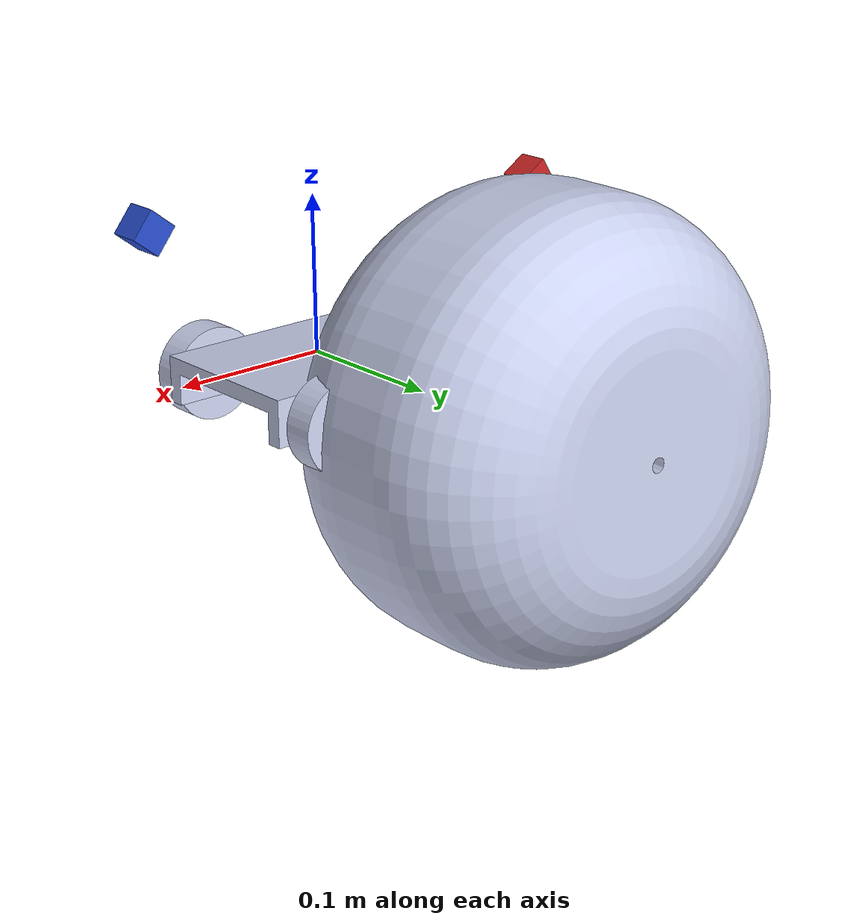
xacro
<?xml version='1.0'?>
<robot name="duckiebot_1" xmlns:xacro="http://www.ros.org/wiki/xacro">
  <xacro:arg name="veh" default="$(arg veh)"/>
  <gazebo>
    <plugin filename="libgazebo_ros_diff_drive.so" name="differential_drive_controller">
      <legacyMode>false</legacyMode>
      <alwaysOn>true</alwaysOn>
      <updateRate>10</updateRate>
      <leftJoint>lwheel_joint</leftJoint>
      <rightJoint>rwheel_joint</rightJoint>
      <wheelSeparation>0.4</wheelSeparation>
      <wheelDiameter>0.2</wheelDiameter>
      <torque>10</torque>
      <commandTopic>$(arg veh)/cmd_vel</commandTopic>
      <odometryTopic>$(arg veh)odom</odometryTopic>
      <odometryFrame>odom</odometryFrame>
      <robotBaseFrame>base_link</robotBaseFrame>
    </plugin>
  </gazebo>

  <gazebo reference="camera">
    <material>Gazebo/Blue</material>
    <sensor name="camera_1" type="camera">
      <update_rate>30</update_rate>
      <camera name="head">
        <horizontal_fov>1.7</horizontal_fov>
        <image>
          <width>1920</width>
          <height>1440</height>
          <format>R8G8B8</format>
        </image>
        <clip>
          <near>0.1</near>
          <far>200</far>
        </clip>
      </camera>
      <plugin filename="libgazebo_ros_camera.so" name="camera_controller">
        <alwaysOn>true</alwaysOn>
        <updateRate>0.0</updateRate>
        <cameraName>$(arg veh)/front/camera_node</cameraName>
        <imageTopicName>image/raw</imageTopicName>
        <cameraInfoTopicName>camera_info</cameraInfoTopicName>
        <frameName>camera</frameName>
        <hackBaseline>0.07</hackBaseline>
      </plugin>
    </sensor>
  </gazebo>

  <gazebo reference="camera_2">
    <material>Gazebo/Red</material>
    <sensor name="camera_2" type="camera">
      <update_rate>30</update_rate>
      <camera name="head_2">
        <horizontal_fov>1.7</horizontal_fov>
        <image>
          <width>1920</width>
          <height>1440</height>
          <format>R8G8B8</format>
        </image>
        <clip>
          <near>0.1</near>
          <far>200</far>
        </clip>
      </camera>
      <plugin filename="libgazebo_ros_camera.so" name="camera_controller">
        <alwaysOn>true</alwaysOn>
        <updateRate>0.0</updateRate>
        <cameraName>$(arg veh)/back/camera_node</cameraName>
        <imageTopicName>image/raw</imageTopicName>
        <cameraInfoTopicName>camera_info</cameraInfoTopicName>
        <frameName>camera</frameName>
        <hackBaseline>0.07</hackBaseline>
      </plugin>
    </sensor>
  </gazebo>
  <link
    name="base_link">
    <inertial>
      <origin
        xyz="-0.0101024393214371 2.77555756156289E-17 -0.00724903839291099"
        rpy="0 0 0" />
      <mass
        value="22.4144467859455" />
      <inertia
        ixx="0.0262333315558155"
        ixy="-9.46739929586217E-20"
        ixz="1.25847877839234E-05"
        iyy="0.0594458638144052"
        iyz="3.28272538130837E-20"
        izz="0.0839695132659337" /><!--xx yy zz*100-->
    </inertial>
    <visual>
      <ori
        xyz="0 0 0"
        rpy="0 0 0" />
      <geometry>
        <mesh
          filename="package://duckiebot_1/meshes/base_link.STL" />
      </geometry>
      <material
        name="">
        <color
          rgba="0.792156862745098 0.819607843137255 0.933333333333333 1" />
      </material>
    </visual>
    <collision>
      <origin
        xyz="0 0 0"
        rpy="0 0 0" />
      <geometry>
        <mesh
          filename="package://duckiebot_1/meshes/base_link.STL" />
      </geometry>
    </collision>
  </link>
  <link
    name="lwheel_link">
    <inertial>
      <origin
        xyz="0 -0.01 1.38777878078145E-17"
        rpy="0 0 0" />
      <mass
        value="5.57789775644867" />
      <inertia
        ixx="145.803923229503E-05"
        ixy="-1.99984150579823E-21"
        ixz="1.05546145898492E-21"
        iyy="254.421861416015E-05"
        iyz="-3.05243290373849E-21"
        izz="145.803923229503E-05" /> <!--xx yy zz*100-->
    </inertial>
    <visual>
      <origin
        xyz="0 0 0"
        rpy="0 0 0" />
      <geometry>
        <mesh
          filename="package://duckiebot_1/meshes/lwheel_link.STL" />
      </geometry>
      <material
        name="">
        <color
          rgba="0.792156862745098 0.819607843137255 0.933333333333333 1" />
      </material>
    </visual>
    <collision>
      <origin
        xyz="0 0 0"
        rpy="0 0 0" />
      <geometry>
        <mesh
          filename="package://duckiebot_1/meshes/lwheel_link.STL" />
      </geometry>
    </collision>
  </link>
  <joint
    name="lwheel_joint"
    type="continuous">
    <origin
      xyz="0.037 0.076 -0.02"
      rpy="0 0 0" />
    <parent
      link="base_link" />
    <child
      link="lwheel_link" />
    <axis
      xyz="0 1 0" />
  </joint>
  <link
    name="rwheel_link">
    <inertial>
      <origin
        xyz="0 0.01 1.38777878078145E-17"
        rpy="0 0 0" />
      <mass
        value="5.57789775644868" />
      <inertia
        ixx="145.803923229503E-05"
        ixy="4.60062935577484E-21"
        ixz="-6.46471806336693E-23"
        iyy="254.421861416015E-05"
        iyz="-3.87738072626345E-21"
        izz="145.803923229503E-05" />
    </inertial>
    <visual>
      <origin
        xyz="0 0 0"
        rpy="0 0 0" />
      <geometry>
        <mesh
          filename="package://duckiebot_1/meshes/rwheel_link.STL" />
      </geometry>
      <material
        name="">
        <color
          rgba="0.792156862745098 0.819607843137255 0.933333333333333 1" />
      </material>
    </visual>
    <collision>
      <origin
        xyz="0 0 0"
        rpy="0 0 0" />
      <geometry>
        <mesh
          filename="package://duckiebot_1/meshes/rwheel_link.STL" />
      </geometry>
    </collision>
  </link>
  <joint
    name="rwheel_joint"
    type="continuous">
    <origin
      xyz="0.037 -0.076 -0.02"
      rpy="0 0 0" />
    <parent
      link="base_link" />
    <child
      link="rwheel_link" />
    <axis
      xyz="0 1 0" />
  </joint>
  <link
    name="wheelconnect_link">
    <inertial>
      <origin
        xyz="1.50048594515827E-05 0 -0.010847034957063"
        rpy="0 0 0" />
      <mass
        value="0.913938040025901" />
      <inertia
        ixx="160.355093188034E-06"
        ixy="-7.73413872737081E-23"
        ixz="1.58787191951214E-09"
        iyy="110.422623295413E-06"
        iyz="1.24825890806269E-22"
        izz="179.481242782248E-06" /> <!--xx yy zz*100-->
    </inertial>
    <visual>
      <origin
        xyz="0 0 0"
        rpy="0 0 0" />
      <geometry>
        <mesh
          filename="package://duckiebot_1/meshes/wheelconnect_link.STL" />
      </geometry>
      <material
        name="">
        <color
          rgba="0.792156862745098 0.819607843137255 0.933333333333333 1" />
      </material>
    </visual>
    <collision>
      <origin
        xyz="0 0 0"
        rpy="0 0 0" />
      <geometry>
        <mesh
          filename="package://duckiebot_1/meshes/wheelconnect_link.STL" />
      </geometry>
    </collision>
  </link>
  <joint
    name="connect_joint"
    type="continuous">
    <origin
      xyz="-0.087 0 -0.021"
      rpy="-5.39137043987863E-16 -2.12238359091467E-18 -0.00393661064679745" />
    <parent
      link="base_link" />
    <child
      link="wheelconnect_link" />
    <axis
      xyz="0 0 1" />
  </joint>
  <link
    name="swheel_link">
    <inertial>
      <origin
        xyz="-2.16840434497101E-18 -0.00500000000000003 0"
        rpy="0 0 0" />
      <mass
        value="0.31101767270539" />
      <inertia
        ixx="104.450101750227E-07"
        ixy="-2.25665210862123E-23"
        ixz="-1.86856433439062E-23"
        iyy="157.063924716222E-07"
        iyz="5.78702483149728E-23"
        izz="104.450101750227E-07" />   <!--xx yy zz*100-->
    </inertial>
    <visual>
      <origin
        xyz="0 0 0"
        rpy="0 0 0" />
      <geometry>
        <mesh
          filename="package://duckiebot_1/meshes/swheel_link.STL" />
      </geometry>
      <material
        name="">
        <color
          rgba="0.792156862745098 0.819607843137255 0.933333333333333 1" />
      </material>
    </visual>
    <collision>
      <origin
        xyz="0 0 0"
        rpy="0 0 0" />
      <geometry>
        <mesh
          filename="package://duckiebot_1/meshes/swheel_link.STL" />
      </geometry>
    </collision>
  </link>
  <joint
    name="swheel_joint"
    type="continuous">
    <origin
      xyz="-0.00500000000000001 0.005 -0.019"
      rpy="-9.86076131526265E-32 0 5.8113236445223E-17" />
    <parent
      link="wheelconnect_link" />
    <child
      link="swheel_link" />
    <axis
      xyz="0 -1 0" />
  </joint>
  <link name="camera">
    <collision>
      <origin rpy="0 0.1 0" xyz="0 0 0"/>
      <geometry>
        <box size="0.02 0.02 0.02"/>
      </geometry>
    </collision>
    <visual>
      <origin rpy="0 0 0" xyz="0 0 0"/>
      <geometry>
        <box size="0.02 0.02 0.02"/>
      </geometry>
    </visual>
    <inertial>
      <mass value="0.01"/>
      <origin rpy="0 0 0" xyz="0 0 0"/>
      <box_inertia m="0.1" x="0.02" y="0.02" z="0.02"/>
      <inertia ixx="1e-6" ixy="0" ixz="0" iyy="1e-6" iyz="0" izz="1e-6"/>
    </inertial>
  </link>
  <joint name="camera_joint" type="fixed">
    <axis xyz="0 0 0"/>
    <origin rpy="0 0.9 0" xyz=".12 0 .1"/>
    <parent link="base_link"/>
    <child link="camera"/>
  </joint>

  <link name="camera_2">
    <collision>
      <origin rpy="0 0.1 0" xyz="0 0 0"/>
      <geometry>
        <box size="0.02 0.02 0.02"/>
      </geometry>
    </collision>
    <visual>
      <origin rpy="0 0 0" xyz="0 0 0"/>
      <geometry>
        <box size="0.02 0.02 0.02"/>
      </geometry>
    </visual>
    <inertial>
      <mass value="0.01"/>
      <origin rpy="0 0 0" xyz="0 0 0"/>
      <box_inertia m="0.1" x="0.02" y="0.02" z="0.02"/>
      <inertia ixx="1e-6" ixy="0" ixz="0" iyy="1e-6" iyz="0" izz="1e-6"/>
    </inertial>
  </link>
  <joint name="camera_joint_2" type="fixed">
    <axis xyz="0 1 0"/>
    <origin rpy="0 1 3.14159" xyz="-0.18 0 .08"/>
    <parent link="base_link"/>
    <child link="camera_2"/>
  </joint>

</robot>
